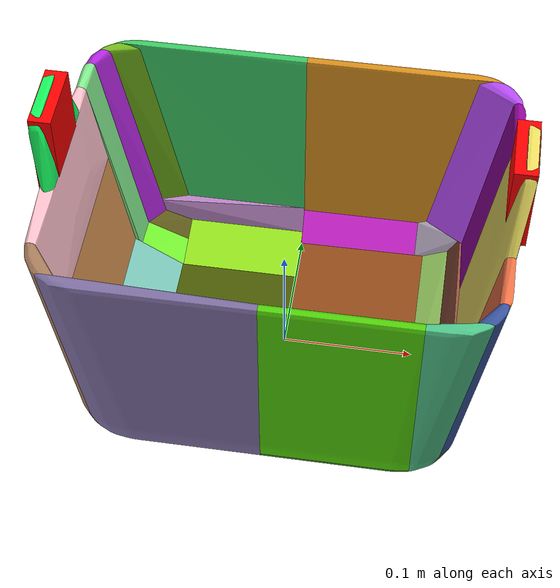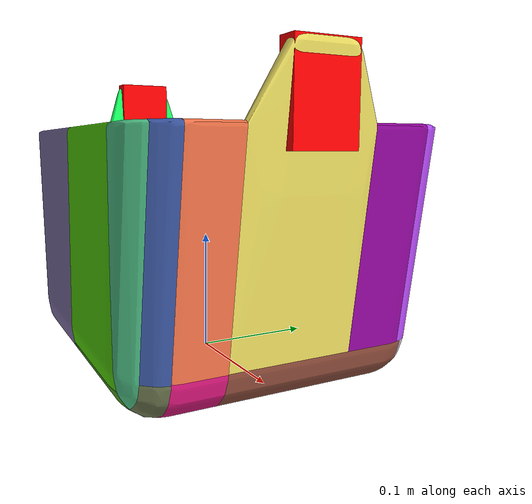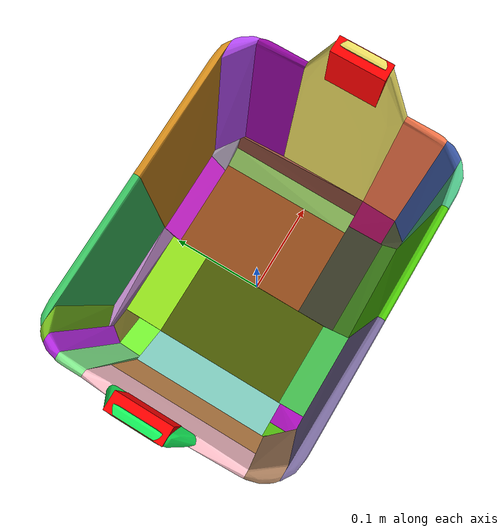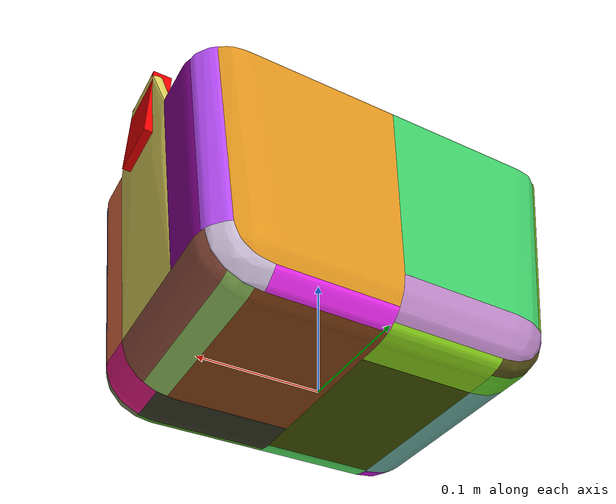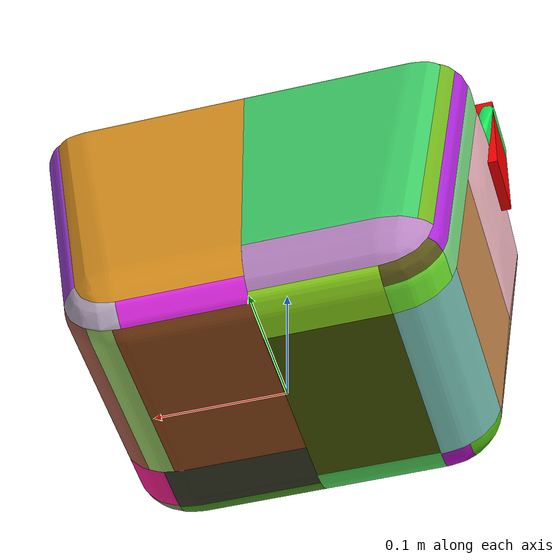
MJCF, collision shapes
<mujoco model="bucket">
  <default>
    <default class="visual">
      <geom group="1" type="mesh" contype="0" conaffinity="0"/>
    </default>
    <default class="collision">
      <geom group="0" type="mesh" friction="10 10 10"/>
    </default>
  </default>
  <asset>
    <texture type="2d" name="wuliaotong_rgb" file="wuliaotong_rgb.png"/>
    <material name="Ml_wuliaotong_01" texture="wuliaotong_rgb" specular="1.0" shininess="0.5"/>
    <mesh name="bucket" file="bucket.obj"/>
    <mesh name="bucket_collision_0" file="bucket_collision_0.obj"/>
    <mesh name="bucket_collision_1" file="bucket_collision_1.obj"/>
    <mesh name="bucket_collision_2" file="bucket_collision_2.obj"/>
    <mesh name="bucket_collision_3" file="bucket_collision_3.obj"/>
    <mesh name="bucket_collision_4" file="bucket_collision_4.obj"/>
    <mesh name="bucket_collision_5" file="bucket_collision_5.obj"/>
    <mesh name="bucket_collision_6" file="bucket_collision_6.obj"/>
    <mesh name="bucket_collision_7" file="bucket_collision_7.obj"/>
    <mesh name="bucket_collision_8" file="bucket_collision_8.obj"/>
    <mesh name="bucket_collision_9" file="bucket_collision_9.obj"/>
    <mesh name="bucket_collision_10" file="bucket_collision_10.obj"/>
    <mesh name="bucket_collision_11" file="bucket_collision_11.obj"/>
    <mesh name="bucket_collision_12" file="bucket_collision_12.obj"/>
    <mesh name="bucket_collision_13" file="bucket_collision_13.obj"/>
    <mesh name="bucket_collision_14" file="bucket_collision_14.obj"/>
    <mesh name="bucket_collision_15" file="bucket_collision_15.obj"/>
    <mesh name="bucket_collision_16" file="bucket_collision_16.obj"/>
    <mesh name="bucket_collision_17" file="bucket_collision_17.obj"/>
    <mesh name="bucket_collision_18" file="bucket_collision_18.obj"/>
    <mesh name="bucket_collision_19" file="bucket_collision_19.obj"/>
    <mesh name="bucket_collision_20" file="bucket_collision_20.obj"/>
    <mesh name="bucket_collision_21" file="bucket_collision_21.obj"/>
    <mesh name="bucket_collision_22" file="bucket_collision_22.obj"/>
    <mesh name="bucket_collision_23" file="bucket_collision_23.obj"/>
    <mesh name="bucket_collision_24" file="bucket_collision_24.obj"/>
    <mesh name="bucket_collision_25" file="bucket_collision_25.obj"/>
    <mesh name="bucket_collision_26" file="bucket_collision_26.obj"/>
    <mesh name="bucket_collision_27" file="bucket_collision_27.obj"/>
    <mesh name="bucket_collision_28" file="bucket_collision_28.obj"/>
    <mesh name="bucket_collision_29" file="bucket_collision_29.obj"/>
    <mesh name="bucket_collision_30" file="bucket_collision_30.obj"/>
    <mesh name="bucket_collision_31" file="bucket_collision_31.obj"/>
    <mesh name="bucket_collision_32" file="bucket_collision_32.obj"/>
    <mesh name="bucket_collision_33" file="bucket_collision_33.obj"/>
    <mesh name="bucket_collision_34" file="bucket_collision_34.obj"/>
  </asset>
  <worldbody>
    <body>
      <body name="object">
        <geom material="Ml_wuliaotong_01" mesh="bucket" class="visual"/>
        <geom mesh="bucket_collision_0" rgba="0.8644226977032149 0.571335743044184 0.11409140703482212 1" class="collision"/>
        <geom mesh="bucket_collision_1" rgba="0.4934349867215765 0.43481174847053716 0.6365711845360652 1" class="collision"/>
        <geom mesh="bucket_collision_2" rgba="0.712395168854418 0.5116387323804593 0.7510406361457334 1" class="collision"/>
        <geom mesh="bucket_collision_3" rgba="0.32274233358144777 0.8258608130035053 0.03552030986572041 1" class="collision"/>
        <geom mesh="bucket_collision_4" rgba="0.2162566396054506 0.22174946071938006 0.14856848047902638 1" class="collision"/>
        <geom mesh="bucket_collision_5" rgba="0.3108244230005064 0.7720510753596029 0.5389345246411178 1" class="collision"/>
        <geom mesh="bucket_collision_6" rgba="0.5775929659914437 0.8780933936399125 0.10614524393246871 1" class="collision"/>
        <geom mesh="bucket_collision_7" rgba="0.6836864834134437 0.14530267737815117 0.8563859696551918 1" class="collision"/>
        <geom mesh="bucket_collision_8" rgba="0.44245523048398716 0.7032376823993847 0.10431812975141563 1" class="collision"/>
        <geom mesh="bucket_collision_9" rgba="0.28335989137946815 0.5757090778472121 0.12617319917260794 1" class="collision"/>
        <geom mesh="bucket_collision_10" rgba="0.9052704758899726 0.09531716261971745 0.5148417753723179 1" class="collision"/>
        <geom mesh="bucket_collision_11" rgba="0.4975317503445573 0.9037675005287124 0.5388763680737495 1" class="collision"/>
        <geom mesh="bucket_collision_12" rgba="0.9372661483406697 0.44474354885150014 0.27792607694787064 1" class="collision"/>
        <geom mesh="bucket_collision_13" rgba="0.7272302146276322 0.2987194437371986 0.9828698114340658 1" class="collision"/>
        <geom mesh="bucket_collision_14" rgba="0.6543511372865597 0.488317981526714 0.35748343091320767 1" class="collision"/>
        <geom mesh="bucket_collision_15" rgba="0.23885956653759688 0.7936912494949915 0.397686692776107 1" class="collision"/>
        <geom mesh="bucket_collision_16" rgba="0.4418890848845973 0.9177618786908526 0.17735719980269427 1" class="collision"/>
        <geom mesh="bucket_collision_17" rgba="0.32096739530033014 0.8781551440336951 0.36834169696060803 1" class="collision"/>
        <geom mesh="bucket_collision_18" rgba="0.21828242198637304 0.32705538718037386 0.6141622819650281 1" class="collision"/>
        <geom mesh="bucket_collision_19" rgba="0.42573456817162547 0.46553251379939276 0.30921025221207044 1" class="collision"/>
        <geom mesh="bucket_collision_20" rgba="0.47285117254634856 0.7639471727987055 0.71137491448041 1" class="collision"/>
        <geom mesh="bucket_collision_21" rgba="0.5715908300540277 0.023193259239210895 0.6181710018086886 1" class="collision"/>
        <geom mesh="bucket_collision_22" rgba="0.3641688746671745 0.34149028802307513 0.09775488379665742 1" class="collision"/>
        <geom mesh="bucket_collision_23" rgba="0.7829007331868487 0.7259630443275787 0.8266396411953858 1" class="collision"/>
        <geom mesh="bucket_collision_24" rgba="0.9122392772933076 0.16070612208405977 0.9248219245179321 1" class="collision"/>
        <geom mesh="bucket_collision_25" rgba="0.2901072285961238 0.35219373548490085 0.01445258781817349 1" class="collision"/>
        <geom mesh="bucket_collision_26" rgba="0.8202612613918336 0.5604036096190729 0.3092031597511714 1" class="collision"/>
        <geom mesh="bucket_collision_27" rgba="0.5694643649486532 0.2896546024211063 0.10121960552762799 1" class="collision"/>
        <geom mesh="bucket_collision_28" rgba="0.9203467378200115 0.8628714979084569 0.3754863976224757 1" class="collision"/>
        <geom mesh="bucket_collision_29" rgba="0.3717806099956813 0.8295984876947331 0.07573157149302834 1" class="collision"/>
        <geom mesh="bucket_collision_30" rgba="0.5958823760399761 0.3250826181809776 0.2518987001757801 1" class="collision"/>
        <geom mesh="bucket_collision_31" rgba="0.7577549907294834 0.07720649096994525 0.8280785183604091 1" class="collision"/>
        <geom mesh="bucket_collision_32" rgba="0.5883754575517366 0.7896605823735925 0.377020906040612 1" class="collision"/>
        <geom mesh="bucket_collision_33" rgba="0.9924231516418911 0.7554110174763835 0.792742572702263 1" class="collision"/>
        <geom mesh="bucket_collision_34" rgba="0.08688340690731011 0.9762185814846313 0.36771835032104305 1" class="collision"/>
        <geom type="box" size="0.008 0.025 0.035" pos="0.162 0 0.21" rgba="1 0 0 0.5" class="collision"/>
        <geom type="box" size="0.008 0.025 0.035" pos="-0.162 0 0.21" rgba="1 0 0 0.5" class="collision"/>
      </body>
    </body>
  </worldbody>
</mujoco>
